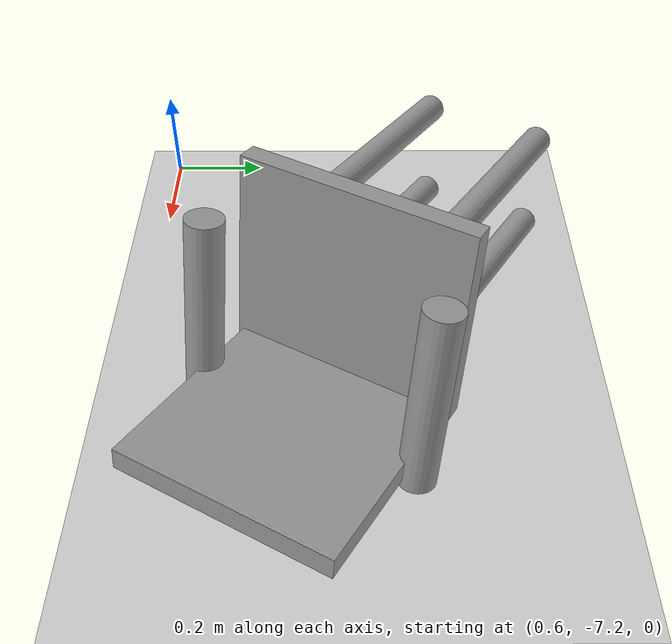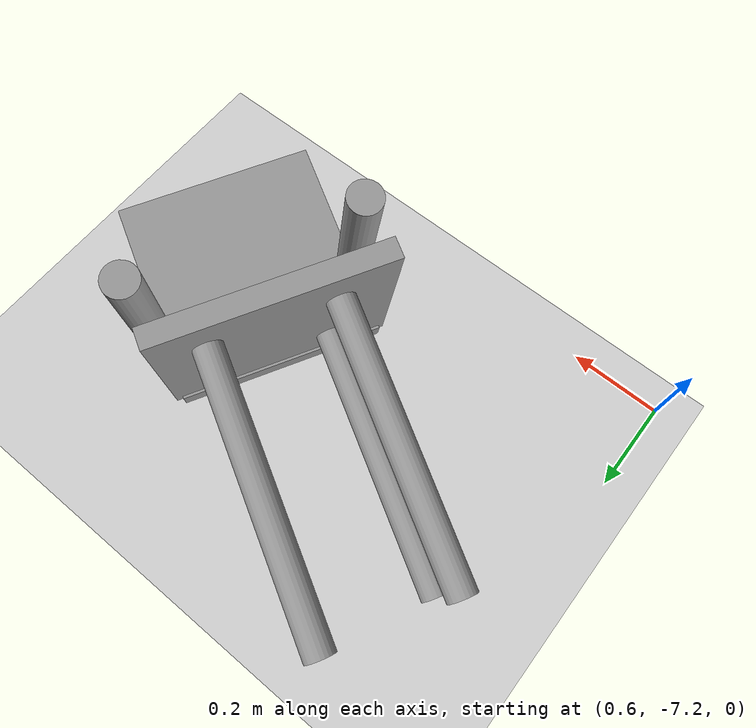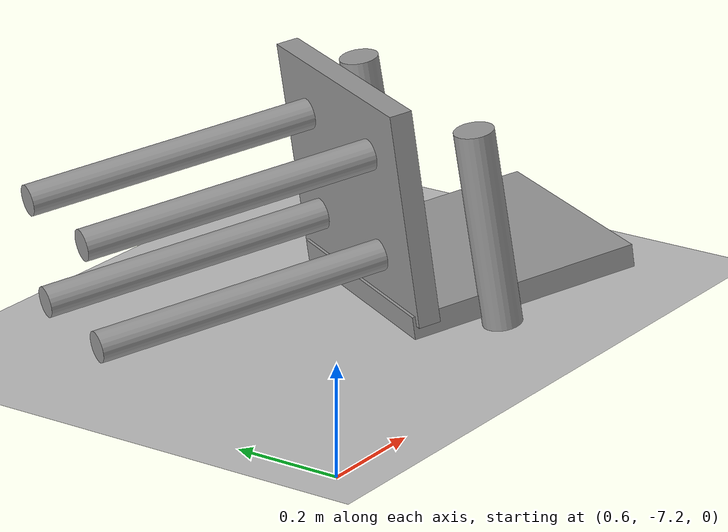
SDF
<sdf version="1.6">
 <world name="default">
  <model name="ground_plane">
   <static>1</static>
   <link name="link">
    <collision name="collision">
     <geometry><plane><normal>0 0 1</normal><size>100 100</size></plane></geometry>
     <surface>
      <contact><collide_bitmask>65535</collide_bitmask></contact>
      <friction><ode><mu>100</mu><mu2>50</mu2></ode></friction>
     </surface>
    </collision>
    <visual name="visual">
     <cast_shadows>0</cast_shadows>
     <geometry><plane><normal>0 0 1</normal><size>100 100</size></plane></geometry>
     <material>
      <script><uri>file://media/materials/scripts/gazebo.material</uri><name>Gazebo/Grey</name></script>
     </material>
    </visual>
   </link>
  </model>
  <model name="chair_clone_0_clone_3">
   <link name="link_4">
    <inertial>
     <mass>0.00194051</mass>
     <inertia>
      <ixx>5.14044e-05</ixx>
      <ixy>0</ixy>
      <ixz>0</ixz>
      <iyy>5.14044e-05</iyy>
      <iyz>0</iyz>
      <izz>8.34973e-07</izz>
     </inertia>
    </inertial>
    <pose>-0.140129 -0.127166 -0.209129 0 -0 0</pose>
    <visual name="visual">
     <geometry><cylinder><radius>0.0293355</radius><length>0.561516</length></cylinder></geometry>
     <material>
      <lighting>1</lighting>
      <script><uri>file://media/materials/scripts/gazebo.material</uri><name>Gazebo/Grey</name></script>
      <emissive>0 0 0 1</emissive>
     </material>
    </visual>
    <collision name="collision">
     <geometry><cylinder><radius>0.029336</radius><length>0.561516</length></cylinder></geometry>
     <surface>
      <friction>
       <ode><mu>1</mu><mu2>1</mu2><fdir1>0 0 0</fdir1><slip1>0</slip1><slip2>0</slip2></ode>
       <torsional>
        <coefficient>1</coefficient>
        <patch_radius>0</patch_radius>
        <surface_radius>0</surface_radius>
        <use_patch_radius>1</use_patch_radius>
        <ode><slip>0</slip></ode>
       </torsional>
      </friction>
      <bounce><restitution_coefficient>0</restitution_coefficient><threshold>1e+06</threshold></bounce>
      <contact>
       <collide_without_contact>0</collide_without_contact>
       <collide_without_contact_bitmask>1</collide_without_contact_bitmask>
       <collide_bitmask>1</collide_bitmask>
       <ode>
        <soft_cfm>0</soft_cfm>
        <soft_erp>0.2</soft_erp>
        <kp>1e+13</kp>
        <kd>1</kd>
        <max_vel>0.01</max_vel>
        <min_depth>0</min_depth>
       </ode>
       <bullet>
        <split_impulse>1</split_impulse>
        <split_impulse_penetration_threshold>-0.01</split_impulse_penetration_threshold>
        <soft_cfm>0</soft_cfm>
        <soft_erp>0.2</soft_erp>
        <kp>1e+13</kp>
        <kd>1</kd>
       </bullet>
      </contact>
     </surface>
    </collision>
   </link>
   <link name="link_4_clone">
    <inertial>
     <mass>0.00194051</mass>
     <inertia>
      <ixx>5.14044e-05</ixx>
      <ixy>0</ixy>
      <ixz>0</ixz>
      <iyy>5.14044e-05</iyy>
      <iyz>0</iyz>
      <izz>8.34973e-07</izz>
     </inertia>
    </inertial>
    <pose>-0.139565 0.126187 -0.209129 0 -0 0</pose>
    <visual name="visual">
     <geometry><cylinder><radius>0.0293355</radius><length>0.561516</length></cylinder></geometry>
     <material>
      <lighting>1</lighting>
      <script><uri>file://media/materials/scripts/gazebo.material</uri><name>Gazebo/Grey</name></script>
      <shader type="pixel"/>
      <emissive>0 0 0 1</emissive>
     </material>
    </visual>
    <collision name="collision">
     <geometry><cylinder><radius>0.029336</radius><length>0.561516</length></cylinder></geometry>
     <surface>
      <friction>
       <ode><mu>1</mu><mu2>1</mu2><fdir1>0 0 0</fdir1><slip1>0</slip1><slip2>0</slip2></ode>
       <torsional>
        <coefficient>1</coefficient>
        <patch_radius>0</patch_radius>
        <surface_radius>0</surface_radius>
        <use_patch_radius>1</use_patch_radius>
        <ode><slip>0</slip></ode>
       </torsional>
      </friction>
      <bounce><restitution_coefficient>0</restitution_coefficient><threshold>1e+06</threshold></bounce>
      <contact>
       <collide_without_contact>0</collide_without_contact>
       <collide_without_contact_bitmask>1</collide_without_contact_bitmask>
       <collide_bitmask>1</collide_bitmask>
       <ode>
        <soft_cfm>0</soft_cfm>
        <soft_erp>0.2</soft_erp>
        <kp>1e+13</kp>
        <kd>1</kd>
        <max_vel>0.01</max_vel>
        <min_depth>0</min_depth>
       </ode>
       <bullet>
        <split_impulse>1</split_impulse>
        <split_impulse_penetration_threshold>-0.01</split_impulse_penetration_threshold>
        <soft_cfm>0</soft_cfm>
        <soft_erp>0.2</soft_erp>
        <kp>1e+13</kp>
        <kd>1</kd>
       </bullet>
      </contact>
     </surface>
    </collision>
   </link>
   <link name="link_4_clone_0">
    <inertial>
     <mass>0.00194051</mass>
     <inertia>
      <ixx>5.14044e-05</ixx>
      <ixy>0</ixy>
      <ixz>0</ixz>
      <iyy>5.14044e-05</iyy>
      <iyz>0</iyz>
      <izz>8.34973e-07</izz>
     </inertia>
    </inertial>
    <pose>0.062929 0.13105 -0.209129 0 -0 0</pose>
    <visual name="visual">
     <geometry><cylinder><radius>0.0293355</radius><length>0.561516</length></cylinder></geometry>
     <material>
      <lighting>1</lighting>
      <script><uri>file://media/materials/scripts/gazebo.material</uri><name>Gazebo/Grey</name></script>
      <shader type="pixel"/>
      <emissive>0 0 0 1</emissive>
     </material>
    </visual>
    <collision name="collision">
     <geometry><cylinder><radius>0.029336</radius><length>0.561516</length></cylinder></geometry>
     <surface>
      <friction>
       <ode><mu>1</mu><mu2>1</mu2><fdir1>0 0 0</fdir1><slip1>0</slip1><slip2>0</slip2></ode>
       <torsional>
        <coefficient>1</coefficient>
        <patch_radius>0</patch_radius>
        <surface_radius>0</surface_radius>
        <use_patch_radius>1</use_patch_radius>
        <ode><slip>0</slip></ode>
       </torsional>
      </friction>
      <bounce><restitution_coefficient>0</restitution_coefficient><threshold>1e+06</threshold></bounce>
      <contact>
       <collide_without_contact>0</collide_without_contact>
       <collide_without_contact_bitmask>1</collide_without_contact_bitmask>
       <collide_bitmask>1</collide_bitmask>
       <ode>
        <soft_cfm>0</soft_cfm>
        <soft_erp>0.2</soft_erp>
        <kp>1e+13</kp>
        <kd>1</kd>
        <max_vel>0.01</max_vel>
        <min_depth>0</min_depth>
       </ode>
       <bullet>
        <split_impulse>1</split_impulse>
        <split_impulse_penetration_threshold>-0.01</split_impulse_penetration_threshold>
        <soft_cfm>0</soft_cfm>
        <soft_erp>0.2</soft_erp>
        <kp>1e+13</kp>
        <kd>1</kd>
       </bullet>
      </contact>
     </surface>
    </collision>
   </link>
   <link name="link_4_clone_1">
    <inertial>
     <mass>0.00194051</mass>
     <inertia>
      <ixx>5.14044e-05</ixx>
      <ixy>0</ixy>
      <ixz>0</ixz>
      <iyy>5.14044e-05</iyy>
      <iyz>0</iyz>
      <izz>8.34973e-07</izz>
     </inertia>
    </inertial>
    <pose>0.061641 -0.111934 -0.209129 0 -0 0</pose>
    <visual name="visual">
     <geometry><cylinder><radius>0.0293355</radius><length>0.561516</length></cylinder></geometry>
     <material>
      <lighting>1</lighting>
      <script><uri>file://media/materials/scripts/gazebo.material</uri><name>Gazebo/Grey</name></script>
      <shader type="pixel"/>
      <emissive>0 0 0 1</emissive>
     </material>
    </visual>
    <collision name="collision">
     <geometry><cylinder><radius>0.029336</radius><length>0.561516</length></cylinder></geometry>
     <surface>
      <friction>
       <ode><mu>1</mu><mu2>1</mu2><fdir1>0 0 0</fdir1><slip1>0</slip1><slip2>0</slip2></ode>
       <torsional>
        <coefficient>1</coefficient>
        <patch_radius>0</patch_radius>
        <surface_radius>0</surface_radius>
        <use_patch_radius>1</use_patch_radius>
        <ode><slip>0</slip></ode>
       </torsional>
      </friction>
      <bounce><restitution_coefficient>0</restitution_coefficient><threshold>1e+06</threshold></bounce>
      <contact>
       <collide_without_contact>0</collide_without_contact>
       <collide_without_contact_bitmask>1</collide_without_contact_bitmask>
       <collide_bitmask>1</collide_bitmask>
       <ode>
        <soft_cfm>0</soft_cfm>
        <soft_erp>0.2</soft_erp>
        <kp>1e+13</kp>
        <kd>1</kd>
        <max_vel>0.01</max_vel>
        <min_depth>0</min_depth>
       </ode>
       <bullet>
        <split_impulse>1</split_impulse>
        <split_impulse_penetration_threshold>-0.01</split_impulse_penetration_threshold>
        <soft_cfm>0</soft_cfm>
        <soft_erp>0.2</soft_erp>
        <kp>1e+13</kp>
        <kd>1</kd>
       </bullet>
      </contact>
     </surface>
    </collision>
   </link>
   <link name="link_5">
    <inertial>
     <mass>0.00816884</mass>
     <inertia>
      <ixx>0.00015002</ixx>
      <ixy>0</ixy>
      <ixz>0</ixz>
      <iyy>0.000115328</iyy>
      <iyz>0</iyz>
      <izz>0.000262862</izz>
     </inertia>
    </inertial>
    <pose>-0.041662 -0.005028 0.089077 0 -0 0</pose>
    <visual name="visual">
     <geometry><box><size>0.409378 0.467496 0.042729</size></box></geometry>
     <material>
      <lighting>1</lighting>
      <script><uri>file://media/materials/scripts/gazebo.material</uri><name>Gazebo/Grey</name></script>
      <emissive>0 0 0 1</emissive>
     </material>
    </visual>
    <collision name="collision">
     <geometry><box><size>0.409378 0.467496 0.042729</size></box></geometry>
     <surface>
      <friction>
       <ode><mu>1</mu><mu2>1</mu2><fdir1>0 0 0</fdir1><slip1>0</slip1><slip2>0</slip2></ode>
       <torsional>
        <coefficient>1</coefficient>
        <patch_radius>0</patch_radius>
        <surface_radius>0</surface_radius>
        <use_patch_radius>1</use_patch_radius>
        <ode><slip>0</slip></ode>
       </torsional>
      </friction>
      <bounce><restitution_coefficient>0</restitution_coefficient><threshold>1e+06</threshold></bounce>
      <contact>
       <collide_without_contact>0</collide_without_contact>
       <collide_without_contact_bitmask>1</collide_without_contact_bitmask>
       <collide_bitmask>1</collide_bitmask>
       <ode>
        <soft_cfm>0</soft_cfm>
        <soft_erp>0.2</soft_erp>
        <kp>1e+13</kp>
        <kd>1</kd>
        <max_vel>0.01</max_vel>
        <min_depth>0</min_depth>
       </ode>
       <bullet>
        <split_impulse>1</split_impulse>
        <split_impulse_penetration_threshold>-0.01</split_impulse_penetration_threshold>
        <soft_cfm>0</soft_cfm>
        <soft_erp>0.2</soft_erp>
        <kp>1e+13</kp>
        <kd>1</kd>
       </bullet>
      </contact>
     </surface>
    </collision>
   </link>
   <link name="link_6">
    <inertial>
     <mass>0.00855687</mass>
     <inertia>
      <ixx>0.000285159</ixx>
      <ixy>0</ixy>
      <ixz>0</ixz>
      <iyy>0.000146983</iyy>
      <iyz>0</iyz>
      <izz>0.000140925</izz>
     </inertia>
    </inertial>
    <pose>0.165697 -0.006458 0.287866 0 -0 0</pose>
    <visual name="visual">
     <geometry><box><size>0.0439 0.442383 0.451884</size></box></geometry>
     <material>
      <lighting>1</lighting>
      <script><uri>file://media/materials/scripts/gazebo.material</uri><name>Gazebo/Grey</name></script>
      <emissive>0 0 0 1</emissive>
     </material>
    </visual>
    <collision name="collision">
     <geometry><box><size>0.0439 0.442383 0.451884</size></box></geometry>
     <surface>
      <friction>
       <ode><mu>1</mu><mu2>1</mu2><fdir1>0 0 0</fdir1><slip1>0</slip1><slip2>0</slip2></ode>
       <torsional>
        <coefficient>1</coefficient>
        <patch_radius>0</patch_radius>
        <surface_radius>0</surface_radius>
        <use_patch_radius>1</use_patch_radius>
        <ode><slip>0</slip></ode>
       </torsional>
      </friction>
      <bounce><restitution_coefficient>0</restitution_coefficient><threshold>1e+06</threshold></bounce>
      <contact>
       <collide_without_contact>0</collide_without_contact>
       <collide_without_contact_bitmask>1</collide_without_contact_bitmask>
       <collide_bitmask>1</collide_bitmask>
       <ode>
        <soft_cfm>0</soft_cfm>
        <soft_erp>0.2</soft_erp>
        <kp>1e+13</kp>
        <kd>1</kd>
        <max_vel>0.01</max_vel>
        <min_depth>0</min_depth>
       </ode>
       <bullet>
        <split_impulse>1</split_impulse>
        <split_impulse_penetration_threshold>-0.01</split_impulse_penetration_threshold>
        <soft_cfm>0</soft_cfm>
        <soft_erp>0.2</soft_erp>
        <kp>1e+13</kp>
        <kd>1</kd>
       </bullet>
      </contact>
     </surface>
    </collision>
   </link>
   <link name="link_7">
    <inertial>
     <mass>0.00209129</mass>
     <inertia>
      <ixx>2.57536e-05</ixx>
      <ixy>0</ixy>
      <ixz>0</ixz>
      <iyy>2.57536e-05</iyy>
      <iyz>0</iyz>
      <izz>1.44551e-06</izz>
     </inertia>
    </inertial>
    <pose>0.0147 0.228665 0.230372 0 1.55081 0</pose>
    <visual name="visual">
     <geometry><cylinder><radius>0.0371808</radius><length>0.378984</length></cylinder></geometry>
     <material>
      <lighting>1</lighting>
      <script><uri>file://media/materials/scripts/gazebo.material</uri><name>Gazebo/Grey</name></script>
      <emissive>0 0 0 1</emissive>
     </material>
    </visual>
    <collision name="collision">
     <geometry><cylinder><radius>0.037181</radius><length>0.378984</length></cylinder></geometry>
     <surface>
      <friction>
       <ode><mu>1</mu><mu2>1</mu2><fdir1>0 0 0</fdir1><slip1>0</slip1><slip2>0</slip2></ode>
       <torsional>
        <coefficient>1</coefficient>
        <patch_radius>0</patch_radius>
        <surface_radius>0</surface_radius>
        <use_patch_radius>1</use_patch_radius>
        <ode><slip>0</slip></ode>
       </torsional>
      </friction>
      <bounce><restitution_coefficient>0</restitution_coefficient><threshold>1e+06</threshold></bounce>
      <contact>
       <collide_without_contact>0</collide_without_contact>
       <collide_without_contact_bitmask>1</collide_without_contact_bitmask>
       <collide_bitmask>1</collide_bitmask>
       <ode>
        <soft_cfm>0</soft_cfm>
        <soft_erp>0.2</soft_erp>
        <kp>1e+13</kp>
        <kd>1</kd>
        <max_vel>0.01</max_vel>
        <min_depth>0</min_depth>
       </ode>
       <bullet>
        <split_impulse>1</split_impulse>
        <split_impulse_penetration_threshold>-0.01</split_impulse_penetration_threshold>
        <soft_cfm>0</soft_cfm>
        <soft_erp>0.2</soft_erp>
        <kp>1e+13</kp>
        <kd>1</kd>
       </bullet>
      </contact>
     </surface>
    </collision>
   </link>
   <link name="link_7_clone">
    <inertial>
     <mass>0.00209129</mass>
     <inertia>
      <ixx>2.57536e-05</ixx>
      <ixy>0</ixy>
      <ixz>0</ixz>
      <iyy>2.57536e-05</iyy>
      <iyz>0</iyz>
      <izz>1.44551e-06</izz>
     </inertia>
    </inertial>
    <pose>0.01639 -0.235319 0.229201 0 1.55081 0</pose>
    <visual name="visual">
     <geometry><cylinder><radius>0.0371808</radius><length>0.378984</length></cylinder></geometry>
     <material>
      <lighting>1</lighting>
      <script><uri>file://media/materials/scripts/gazebo.material</uri><name>Gazebo/Grey</name></script>
      <shader type="pixel"/>
      <emissive>0 0 0 1</emissive>
     </material>
    </visual>
    <collision name="collision">
     <geometry><cylinder><radius>0.037181</radius><length>0.378984</length></cylinder></geometry>
     <surface>
      <friction>
       <ode><mu>1</mu><mu2>1</mu2><fdir1>0 0 0</fdir1><slip1>0</slip1><slip2>0</slip2></ode>
       <torsional>
        <coefficient>1</coefficient>
        <patch_radius>0</patch_radius>
        <surface_radius>0</surface_radius>
        <use_patch_radius>1</use_patch_radius>
        <ode><slip>0</slip></ode>
       </torsional>
      </friction>
      <bounce><restitution_coefficient>0</restitution_coefficient><threshold>1e+06</threshold></bounce>
      <contact>
       <collide_without_contact>0</collide_without_contact>
       <collide_without_contact_bitmask>1</collide_without_contact_bitmask>
       <collide_bitmask>1</collide_bitmask>
       <ode>
        <soft_cfm>0</soft_cfm>
        <soft_erp>0.2</soft_erp>
        <kp>1e+13</kp>
        <kd>1</kd>
        <max_vel>0.01</max_vel>
        <min_depth>0</min_depth>
       </ode>
       <bullet>
        <split_impulse>1</split_impulse>
        <split_impulse_penetration_threshold>-0.01</split_impulse_penetration_threshold>
        <soft_cfm>0</soft_cfm>
        <soft_erp>0.2</soft_erp>
        <kp>1e+13</kp>
        <kd>1</kd>
       </bullet>
      </contact>
     </surface>
    </collision>
   </link>
   <joint name="link_5_JOINT_2" type="fixed">
    <parent>link_5</parent>
    <child>link_4_clone_1</child>
    <physics>
     <ode><limit><cfm>0</cfm><erp>0.2</erp></limit><suspension><cfm>0</cfm><erp>0.2</erp></suspension></ode>
    </physics>
   </joint>
   <joint name="link_5_JOINT_3" type="fixed">
    <parent>link_5</parent>
    <child>link_4</child>
    <physics>
     <ode><limit><cfm>0</cfm><erp>0.2</erp></limit><suspension><cfm>0</cfm><erp>0.2</erp></suspension></ode>
    </physics>
   </joint>
   <joint name="link_5_JOINT_4" type="fixed">
    <parent>link_5</parent>
    <child>link_4_clone_0</child>
    <physics>
     <ode><limit><cfm>0</cfm><erp>0.2</erp></limit><suspension><cfm>0</cfm><erp>0.2</erp></suspension></ode>
    </physics>
   </joint>
   <joint name="link_5_JOINT_5" type="fixed">
    <parent>link_5</parent>
    <child>link_4_clone</child>
    <physics>
     <ode><limit><cfm>0</cfm><erp>0.2</erp></limit><suspension><cfm>0</cfm><erp>0.2</erp></suspension></ode>
    </physics>
   </joint>
   <joint name="link_5_JOINT_6" type="fixed">
    <parent>link_5</parent>
    <child>link_6</child>
    <physics>
     <ode><limit><cfm>0</cfm><erp>0.2</erp></limit><suspension><cfm>0</cfm><erp>0.2</erp></suspension></ode>
    </physics>
   </joint>
   <joint name="link_5_JOINT_7" type="fixed">
    <parent>link_5</parent>
    <child>link_7</child>
    <physics>
     <ode><limit><cfm>0</cfm><erp>0.2</erp></limit><suspension><cfm>0</cfm><erp>0.2</erp></suspension></ode>
    </physics>
   </joint>
   <joint name="link_5_JOINT_8" type="fixed">
    <parent>link_5</parent>
    <child>link_7_clone</child>
    <physics>
     <ode><limit><cfm>0</cfm><erp>0.2</erp></limit><suspension><cfm>0</cfm><erp>0.2</erp></suspension></ode>
    </physics>
   </joint>
   <static>0</static>
   <pose>1.20685 -6.729 0.176558 -0.000894 1.42409 -0.513604</pose>
  </model>
 </world>
</sdf>
